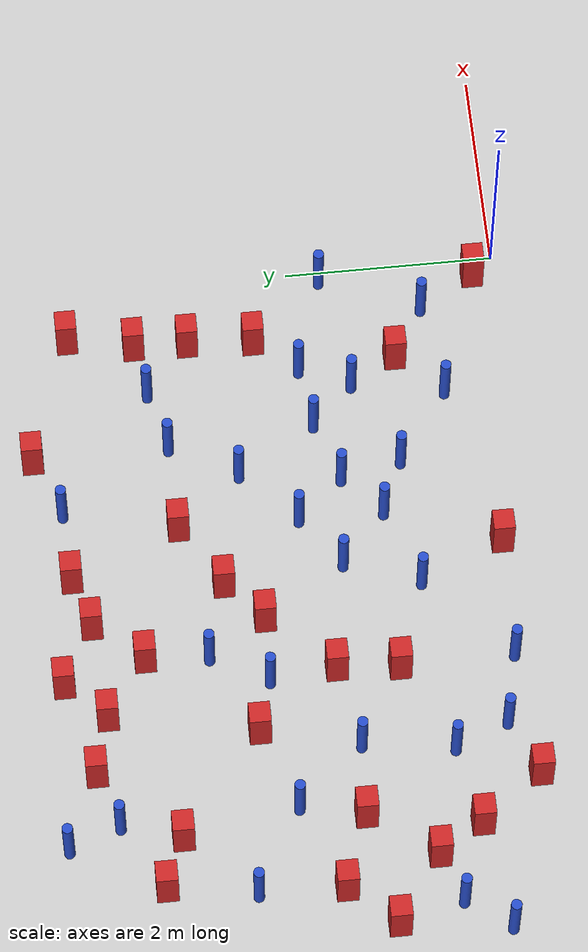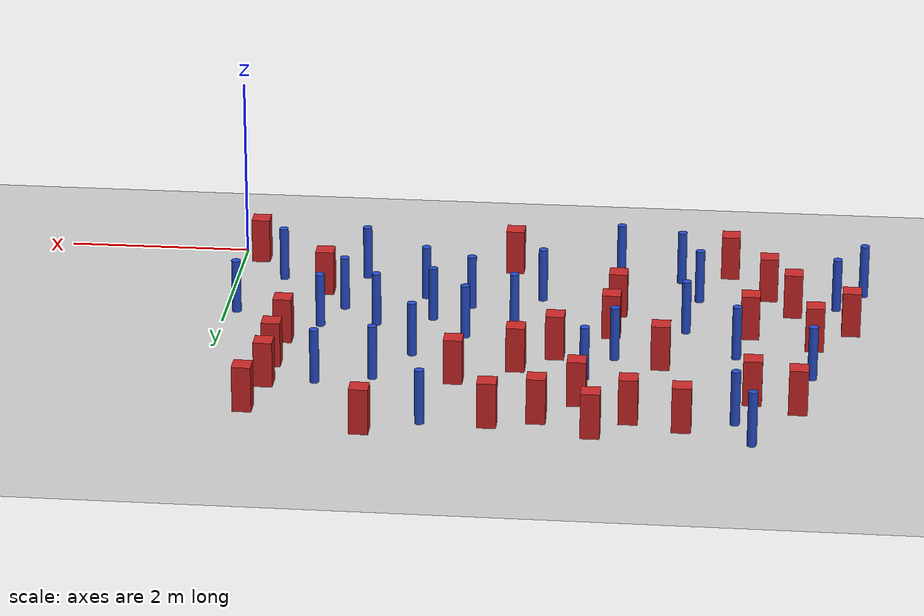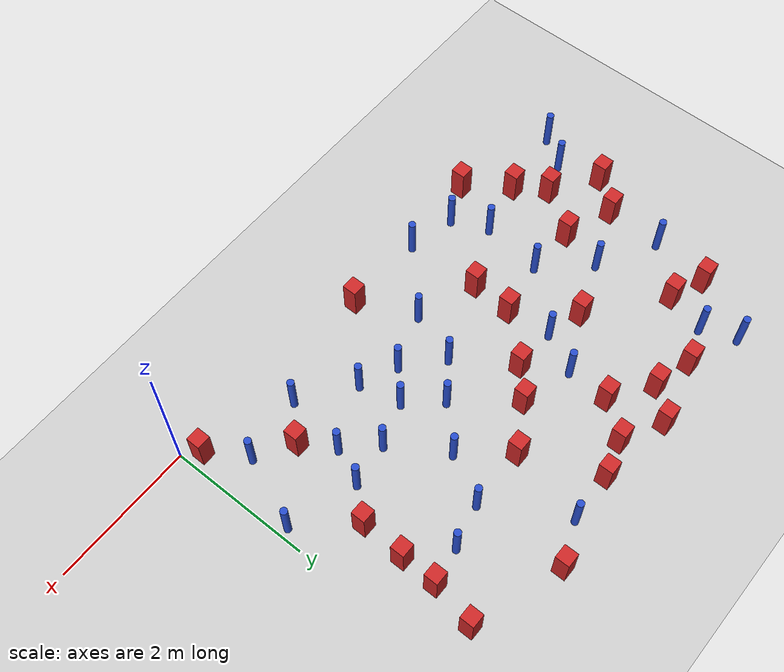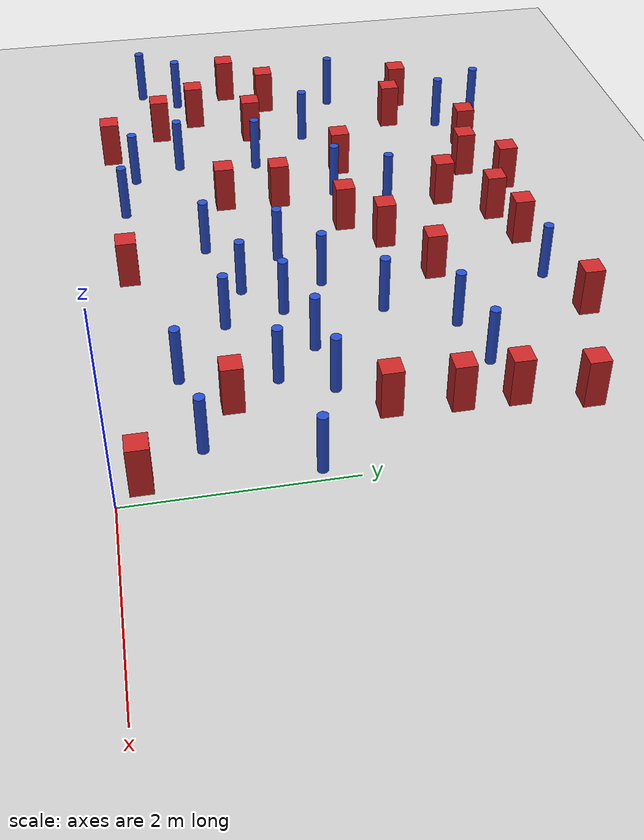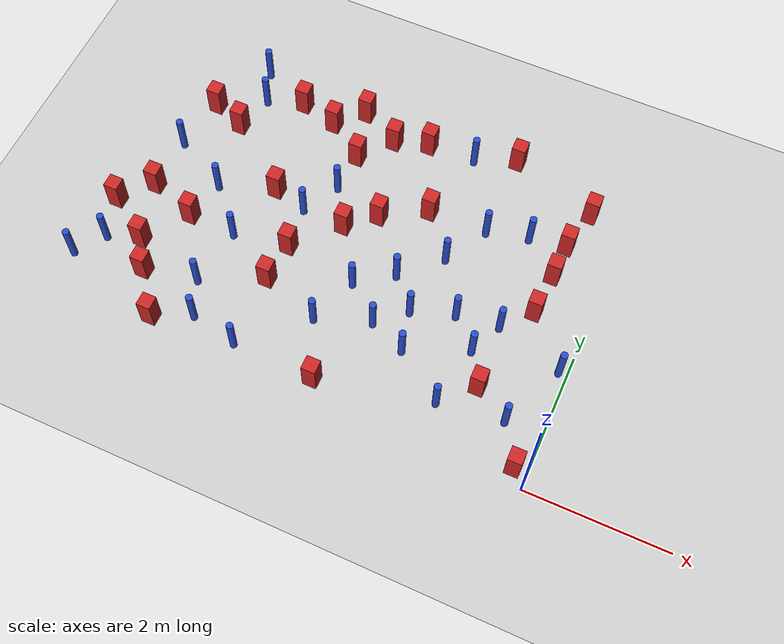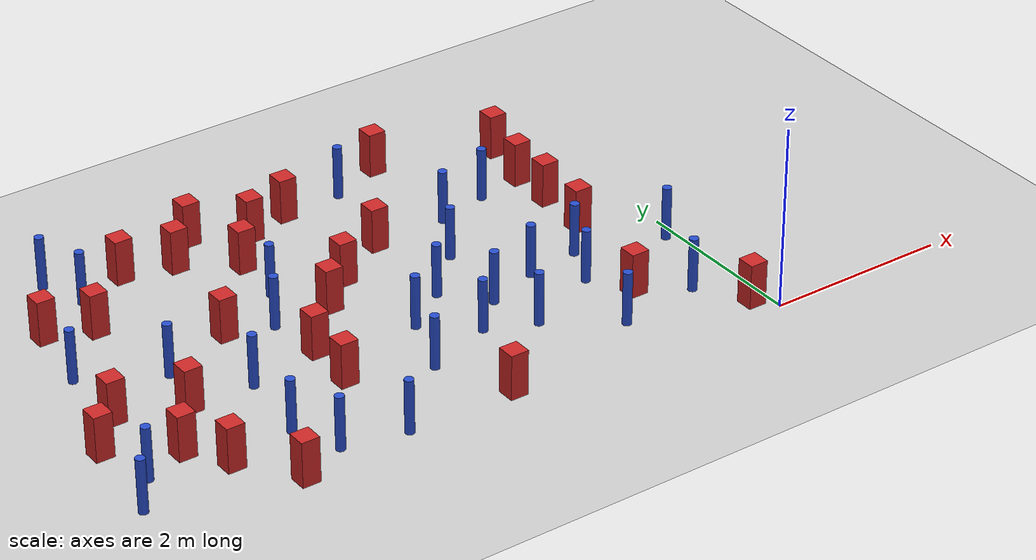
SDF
<sdf version="1.6">
 <world name="default">
  <model name="ground_plane">
   <static>1</static>
   <link name="link">
    <collision name="collision">
     <geometry><plane><normal>0 0 1</normal><size>100 100</size></plane></geometry>
     <surface><friction><ode><mu>100</mu><mu2>50</mu2></ode></friction></surface>
    </collision>
    <visual name="visual">
     <cast_shadows>0</cast_shadows>
     <geometry><plane><normal>0 0 1</normal><size>100 100</size></plane></geometry>
     <material>
      <ambient>1.0 1.0 1.0 1.0</ambient>
      <diffuse>0.8 0.8 0.8 1.0</diffuse>
      <specular>0.01 0.01 0.01 1.000000</specular>
     </material>
    </visual>
   </link>
  </model>
  <model name="pole_obstacle2">
   <static>true</static>
   <pose>-5.59544689235 2.43594534413 -9.47619616065e-06 5.49618799738e-07 2.36310414051e-07 -1.55090534805e-07</pose>
   <link name="link">
    <pose>0 0 0.3 0 -0 0</pose>
    <inertial>
     <mass>1</mass>
     <inertia><ixx>0.145833</ixx><ixy>0</ixy><ixz>0</ixz><iyy>0.145833</iyy><iyz>0</iyz><izz>0.125</izz></inertia>
    </inertial>
    <collision name="collision">
     <geometry><cylinder><radius>0.05</radius><length>.6</length></cylinder></geometry>
    </collision>
    <visual name="visual">
     <geometry><cylinder><radius>0.05</radius><length>.6</length></cylinder></geometry>
     <material>
      <script><name>Gazebo/Blue</name><uri>file://media/materials/scripts/gazebo.material</uri></script>
     </material>
    </visual>
   </link>
  </model>
  <model name="pole_obstacle3">
   <static>true</static>
   <pose>-1.79859433589 3.30144973369 -9.47619616065e-06 5.49618799737e-07 2.36310414062e-07 -1.55090534798e-07</pose>
   <link name="link">
    <pose>0 0 0.3 0 -0 0</pose>
    <inertial>
     <mass>1</mass>
     <inertia><ixx>0.145833</ixx><ixy>0</ixy><ixz>0</ixz><iyy>0.145833</iyy><iyz>0</iyz><izz>0.125</izz></inertia>
    </inertial>
    <collision name="collision">
     <geometry><cylinder><radius>0.05</radius><length>.6</length></cylinder></geometry>
    </collision>
    <visual name="visual">
     <geometry><cylinder><radius>0.05</radius><length>.6</length></cylinder></geometry>
     <material>
      <script><name>Gazebo/Blue</name><uri>file://media/materials/scripts/gazebo.material</uri></script>
     </material>
    </visual>
   </link>
  </model>
  <model name="pole_obstacle4">
   <static>true</static>
   <pose>-2.6717958394 2.1456863757 -9.47619616065e-06 5.49618799737e-07 2.36310414051e-07 -1.55090534807e-07</pose>
   <link name="link">
    <pose>0 0 0.3 0 -0 0</pose>
    <inertial>
     <mass>1</mass>
     <inertia><ixx>0.145833</ixx><ixy>0</ixy><ixz>0</ixz><iyy>0.145833</iyy><iyz>0</iyz><izz>0.125</izz></inertia>
    </inertial>
    <collision name="collision">
     <geometry><cylinder><radius>0.05</radius><length>.6</length></cylinder></geometry>
    </collision>
    <visual name="visual">
     <geometry><cylinder><radius>0.05</radius><length>.6</length></cylinder></geometry>
     <material>
      <script><name>Gazebo/Blue</name><uri>file://media/materials/scripts/gazebo.material</uri></script>
     </material>
    </visual>
   </link>
  </model>
  <model name="pole_obstacle11">
   <static>true</static>
   <pose>-0.522241702906 0.749692683918 -9.47619616065e-06 5.49618799737e-07 2.36310414066e-07 -1.55090534796e-07</pose>
   <link name="link">
    <pose>0 0 0.3 0 -0 0</pose>
    <inertial>
     <mass>1</mass>
     <inertia><ixx>0.145833</ixx><ixy>0</ixy><ixz>0</ixz><iyy>0.145833</iyy><iyz>0</iyz><izz>0.125</izz></inertia>
    </inertial>
    <collision name="collision">
     <geometry><cylinder><radius>0.05</radius><length>.6</length></cylinder></geometry>
    </collision>
    <visual name="visual">
     <geometry><cylinder><radius>0.05</radius><length>.6</length></cylinder></geometry>
     <material>
      <script><name>Gazebo/Blue</name><uri>file://media/materials/scripts/gazebo.material</uri></script>
     </material>
    </visual>
   </link>
  </model>
  <model name="pole_obstacle16">
   <static>true</static>
   <pose>-4.01819675636 3.11525010436 -9.47619616065e-06 5.49618799737e-07 2.36310414053e-07 -1.55090534804e-07</pose>
   <link name="link">
    <pose>0 0 0.3 0 -0 0</pose>
    <inertial>
     <mass>1</mass>
     <inertia><ixx>0.145833</ixx><ixy>0</ixy><ixz>0</ixz><iyy>0.145833</iyy><iyz>0</iyz><izz>0.125</izz></inertia>
    </inertial>
    <collision name="collision">
     <geometry><cylinder><radius>0.05</radius><length>.6</length></cylinder></geometry>
    </collision>
    <visual name="visual">
     <geometry><cylinder><radius>0.05</radius><length>.6</length></cylinder></geometry>
     <material>
      <script><name>Gazebo/Blue</name><uri>file://media/materials/scripts/gazebo.material</uri></script>
     </material>
    </visual>
   </link>
  </model>
  <model name="pole_obstacle27">
   <static>true</static>
   <pose>-3.17535466394 1.78121202835 -9.47619616065e-06 5.49618799737e-07 2.36310414072e-07 -1.55090534793e-07</pose>
   <link name="link">
    <pose>0 0 0.3 0 -0 0</pose>
    <inertial>
     <mass>1</mass>
     <inertia><ixx>0.145833</ixx><ixy>0</ixy><ixz>0</ixz><iyy>0.145833</iyy><iyz>0</iyz><izz>0.125</izz></inertia>
    </inertial>
    <collision name="collision">
     <geometry><cylinder><radius>0.05</radius><length>.6</length></cylinder></geometry>
    </collision>
    <visual name="visual">
     <geometry><cylinder><radius>0.05</radius><length>.6</length></cylinder></geometry>
     <material>
      <script><name>Gazebo/Blue</name><uri>file://media/materials/scripts/gazebo.material</uri></script>
     </material>
    </visual>
   </link>
  </model>
  <model name="square_post_obstacle22">
   <static>true</static>
   <pose>-6.42126478545 2.09017820451 -6.11067671241e-07 -5.50515727128e-06 -8.79689657224e-07 2.37013304536e-05</pose>
   <link name="link">
    <pose>0 0 0.25 0 -0 0</pose>
    <inertial>
     <mass>100</mass>
     <inertia>
      <ixx>0.166667</ixx>
      <ixy>0</ixy>
      <ixz>0</ixz>
      <iyy>0.166667</iyy>
      <iyz>0</iyz>
      <izz>0.166667</izz>
     </inertia>
    </inertial>
    <collision name="collision"><geometry><box><size>.2 .2 .5</size></box></geometry></collision>
    <visual name="visual">
     <geometry><box><size>.2 .2 .5</size></box></geometry>
     <material>
      <script><name>Gazebo/Red</name><uri>file://media/materials/scripts/gazebo.material</uri></script>
     </material>
    </visual>
   </link>
  </model>
  <model name="pole_obstacle35">
   <static>true</static>
   <pose>-1.44273794658 0.623921186694 -9.47619616065e-06 5.49618799737e-07 2.36310414065e-07 -1.55090534798e-07</pose>
   <link name="link">
    <pose>0 0 0.3 0 -0 0</pose>
    <inertial>
     <mass>1</mass>
     <inertia><ixx>0.145833</ixx><ixy>0</ixy><ixz>0</ixz><iyy>0.145833</iyy><iyz>0</iyz><izz>0.125</izz></inertia>
    </inertial>
    <collision name="collision">
     <geometry><cylinder><radius>0.05</radius><length>.6</length></cylinder></geometry>
    </collision>
    <visual name="visual">
     <geometry><cylinder><radius>0.05</radius><length>.6</length></cylinder></geometry>
     <material>
      <script><name>Gazebo/Blue</name><uri>file://media/materials/scripts/gazebo.material</uri></script>
     </material>
    </visual>
   </link>
  </model>
  <model name="square_post_obstacle30">
   <static>true</static>
   <pose>-0.548427441222 4.16960764601 -6.11067671241e-07 -5.50515727128e-06 -8.79689657224e-07 2.37013304536e-05</pose>
   <link name="link">
    <pose>0 0 0.25 0 -0 0</pose>
    <inertial>
     <mass>100</mass>
     <inertia>
      <ixx>0.166667</ixx>
      <ixy>0</ixy>
      <ixz>0</ixz>
      <iyy>0.166667</iyy>
      <iyz>0</iyz>
      <izz>0.166667</izz>
     </inertia>
    </inertial>
    <collision name="collision"><geometry><box><size>.2 .2 .5</size></box></geometry></collision>
    <visual name="visual">
     <geometry><box><size>.2 .2 .5</size></box></geometry>
     <material>
      <script><name>Gazebo/Red</name><uri>file://media/materials/scripts/gazebo.material</uri></script>
     </material>
    </visual>
   </link>
  </model>
  <model name="square_post_obstacle35">
   <static>true</static>
   <pose>-5.46748114303 0.205011239272 -6.11067671241e-07 -5.50515727128e-06 -8.79689657224e-07 2.37013304536e-05</pose>
   <link name="link">
    <pose>0 0 0.25 0 -0 0</pose>
    <inertial>
     <mass>100</mass>
     <inertia>
      <ixx>0.166667</ixx>
      <ixy>0</ixy>
      <ixz>0</ixz>
      <iyy>0.166667</iyy>
      <iyz>0</iyz>
      <izz>0.166667</izz>
     </inertia>
    </inertial>
    <collision name="collision"><geometry><box><size>.2 .2 .5</size></box></geometry></collision>
    <visual name="visual">
     <geometry><box><size>.2 .2 .5</size></box></geometry>
     <material>
      <script><name>Gazebo/Red</name><uri>file://media/materials/scripts/gazebo.material</uri></script>
     </material>
    </visual>
   </link>
  </model>
  <model name="square_post_obstacle40">
   <static>true</static>
   <pose>-4.80094264174 2.72460760366 -6.11067671241e-07 -5.50515727128e-06 -8.79689657224e-07 2.37013304536e-05</pose>
   <link name="link">
    <pose>0 0 0.25 0 -0 0</pose>
    <inertial>
     <mass>100</mass>
     <inertia>
      <ixx>0.166667</ixx>
      <ixy>0</ixy>
      <ixz>0</ixz>
      <iyy>0.166667</iyy>
      <iyz>0</iyz>
      <izz>0.166667</izz>
     </inertia>
    </inertial>
    <collision name="collision"><geometry><box><size>.2 .2 .5</size></box></geometry></collision>
    <visual name="visual">
     <geometry><box><size>.2 .2 .5</size></box></geometry>
     <material>
      <script><name>Gazebo/Red</name><uri>file://media/materials/scripts/gazebo.material</uri></script>
     </material>
    </visual>
   </link>
  </model>
  <model name="square_post_obstacle41">
   <static>true</static>
   <pose>-5.79028852805 3.51688546522 -6.11067671241e-07 -5.50515727128e-06 -8.79689657224e-07 2.37013304536e-05</pose>
   <link name="link">
    <pose>0 0 0.25 0 -0 0</pose>
    <inertial>
     <mass>100</mass>
     <inertia>
      <ixx>0.166667</ixx>
      <ixy>0</ixy>
      <ixz>0</ixz>
      <iyy>0.166667</iyy>
      <iyz>0</iyz>
      <izz>0.166667</izz>
     </inertia>
    </inertial>
    <collision name="collision"><geometry><box><size>.2 .2 .5</size></box></geometry></collision>
    <visual name="visual">
     <geometry><box><size>.2 .2 .5</size></box></geometry>
     <material>
      <script><name>Gazebo/Red</name><uri>file://media/materials/scripts/gazebo.material</uri></script>
     </material>
    </visual>
   </link>
  </model>
  <model name="square_post_obstacle60">
   <static>true</static>
   <pose>-0.682380753927 3.53982347977 -6.11067671241e-07 -5.50515727128e-06 -8.79689657224e-07 2.37013304536e-05</pose>
   <link name="link">
    <pose>0 0 0.25 0 -0 0</pose>
    <inertial>
     <mass>100</mass>
     <inertia>
      <ixx>0.166667</ixx>
      <ixy>0</ixy>
      <ixz>0</ixz>
      <iyy>0.166667</iyy>
      <iyz>0</iyz>
      <izz>0.166667</izz>
     </inertia>
    </inertial>
    <collision name="collision"><geometry><box><size>.2 .2 .5</size></box></geometry></collision>
    <visual name="visual">
     <geometry><box><size>.2 .2 .5</size></box></geometry>
     <material>
      <script><name>Gazebo/Red</name><uri>file://media/materials/scripts/gazebo.material</uri></script>
     </material>
    </visual>
   </link>
  </model>
  <model name="square_post_obstacle64">
   <static>true</static>
   <pose>-3.09609109604 4.32268352987 -6.11067671241e-07 -5.50515727128e-06 -8.79689657224e-07 2.37013304536e-05</pose>
   <link name="link">
    <pose>0 0 0.25 0 -0 0</pose>
    <inertial>
     <mass>100</mass>
     <inertia>
      <ixx>0.166667</ixx>
      <ixy>0</ixy>
      <ixz>0</ixz>
      <iyy>0.166667</iyy>
      <iyz>0</iyz>
      <izz>0.166667</izz>
     </inertia>
    </inertial>
    <collision name="collision"><geometry><box><size>.2 .2 .5</size></box></geometry></collision>
    <visual name="visual">
     <geometry><box><size>.2 .2 .5</size></box></geometry>
     <material>
      <script><name>Gazebo/Red</name><uri>file://media/materials/scripts/gazebo.material</uri></script>
     </material>
    </visual>
   </link>
  </model>
  <model name="pole_obstacle77">
   <static>true</static>
   <pose>-1.68492753225 1.90798203488 -9.47619616065e-06 5.49618799737e-07 2.36310414065e-07 -1.55090534798e-07</pose>
   <link name="link">
    <pose>0 0 0.3 0 -0 0</pose>
    <inertial>
     <mass>1</mass>
     <inertia><ixx>0.145833</ixx><ixy>0</ixy><ixz>0</ixz><iyy>0.145833</iyy><iyz>0</iyz><izz>0.125</izz></inertia>
    </inertial>
    <collision name="collision">
     <geometry><cylinder><radius>0.05</radius><length>.6</length></cylinder></geometry>
    </collision>
    <visual name="visual">
     <geometry><cylinder><radius>0.05</radius><length>.6</length></cylinder></geometry>
     <material>
      <script><name>Gazebo/Blue</name><uri>file://media/materials/scripts/gazebo.material</uri></script>
     </material>
    </visual>
   </link>
  </model>
  <model name="square_post_obstacle69">
   <static>true</static>
   <pose>-5.7262957752 1.84025555032 -6.11067671241e-07 -5.50515727128e-06 -8.79689657224e-07 2.37013304536e-05</pose>
   <link name="link">
    <pose>0 0 0.25 0 -0 0</pose>
    <inertial>
     <mass>100</mass>
     <inertia>
      <ixx>0.166667</ixx>
      <ixy>0</ixy>
      <ixz>0</ixz>
      <iyy>0.166667</iyy>
      <iyz>0</iyz>
      <izz>0.166667</izz>
     </inertia>
    </inertial>
    <collision name="collision"><geometry><box><size>.2 .2 .5</size></box></geometry></collision>
    <visual name="visual">
     <geometry><box><size>.2 .2 .5</size></box></geometry>
     <material>
      <script><name>Gazebo/Red</name><uri>file://media/materials/scripts/gazebo.material</uri></script>
     </material>
    </visual>
   </link>
  </model>
  <model name="square_post_obstacle73">
   <static>true</static>
   <pose>-6.26752196068 3.70744454973 -6.11067671241e-07 -5.50515727128e-06 -8.79689657224e-07 2.37013304536e-05</pose>
   <link name="link">
    <pose>0 0 0.25 0 -0 0</pose>
    <inertial>
     <mass>100</mass>
     <inertia>
      <ixx>0.166667</ixx>
      <ixy>0</ixy>
      <ixz>0</ixz>
      <iyy>0.166667</iyy>
      <iyz>0</iyz>
      <izz>0.166667</izz>
     </inertia>
    </inertial>
    <collision name="collision"><geometry><box><size>.2 .2 .5</size></box></geometry></collision>
    <visual name="visual">
     <geometry><box><size>.2 .2 .5</size></box></geometry>
     <material>
      <script><name>Gazebo/Red</name><uri>file://media/materials/scripts/gazebo.material</uri></script>
     </material>
    </visual>
   </link>
  </model>
  <model name="pole_obstacle86">
   <static>true</static>
   <pose>-2.67267665183 1.34352672443 -9.47619616065e-06 5.49618799737e-07 2.36310414072e-07 -1.55090534793e-07</pose>
   <link name="link">
    <pose>0 0 0.3 0 -0 0</pose>
    <inertial>
     <mass>1</mass>
     <inertia><ixx>0.145833</ixx><ixy>0</ixy><ixz>0</ixz><iyy>0.145833</iyy><iyz>0</iyz><izz>0.125</izz></inertia>
    </inertial>
    <collision name="collision">
     <geometry><cylinder><radius>0.05</radius><length>.6</length></cylinder></geometry>
    </collision>
    <visual name="visual">
     <geometry><cylinder><radius>0.05</radius><length>.6</length></cylinder></geometry>
     <material>
      <script><name>Gazebo/Blue</name><uri>file://media/materials/scripts/gazebo.material</uri></script>
     </material>
    </visual>
   </link>
  </model>
  <model name="square_post_obstacle76">
   <static>true</static>
   <pose>-0.732846755061 2.39644119763 -6.11067671241e-07 -5.50515727128e-06 -8.79689657224e-07 2.37013304536e-05</pose>
   <link name="link">
    <pose>0 0 0.25 0 -0 0</pose>
    <inertial>
     <mass>100</mass>
     <inertia>
      <ixx>0.166667</ixx>
      <ixy>0</ixy>
      <ixz>0</ixz>
      <iyy>0.166667</iyy>
      <iyz>0</iyz>
      <izz>0.166667</izz>
     </inertia>
    </inertial>
    <collision name="collision"><geometry><box><size>.2 .2 .5</size></box></geometry></collision>
    <visual name="visual">
     <geometry><box><size>.2 .2 .5</size></box></geometry>
     <material>
      <script><name>Gazebo/Red</name><uri>file://media/materials/scripts/gazebo.material</uri></script>
     </material>
    </visual>
   </link>
  </model>
  <model name="square_post_obstacle78">
   <static>true</static>
   <pose>-4.27884442889 1.36884087386 -6.11067671241e-07 -5.50515727128e-06 -8.79689657224e-07 2.37013304536e-05</pose>
   <link name="link">
    <pose>0 0 0.25 0 -0 0</pose>
    <inertial>
     <mass>100</mass>
     <inertia>
      <ixx>0.166667</ixx>
      <ixy>0</ixy>
      <ixz>0</ixz>
      <iyy>0.166667</iyy>
      <iyz>0</iyz>
      <izz>0.166667</izz>
     </inertia>
    </inertial>
    <collision name="collision"><geometry><box><size>.2 .2 .5</size></box></geometry></collision>
    <visual name="visual">
     <geometry><box><size>.2 .2 .5</size></box></geometry>
     <material>
      <script><name>Gazebo/Red</name><uri>file://media/materials/scripts/gazebo.material</uri></script>
     </material>
    </visual>
   </link>
  </model>
  <model name="square_post_obstacle80">
   <static>true</static>
   <pose>-2.65270403747 3.28384668978 -6.11067671241e-07 -5.50515727128e-06 -8.79689657224e-07 2.37013304536e-05</pose>
   <link name="link">
    <pose>0 0 0.25 0 -0 0</pose>
    <inertial>
     <mass>100</mass>
     <inertia>
      <ixx>0.166667</ixx>
      <ixy>0</ixy>
      <ixz>0</ixz>
      <iyy>0.166667</iyy>
      <iyz>0</iyz>
      <izz>0.166667</izz>
     </inertia>
    </inertial>
    <collision name="collision"><geometry><box><size>.2 .2 .5</size></box></geometry></collision>
    <visual name="visual">
     <geometry><box><size>.2 .2 .5</size></box></geometry>
     <material>
      <script><name>Gazebo/Red</name><uri>file://media/materials/scripts/gazebo.material</uri></script>
     </material>
    </visual>
   </link>
  </model>
  <model name="square_post_obstacle83">
   <static>true</static>
   <pose>-6.17686945433 1.21784740283 -6.11067671241e-07 -5.50515727128e-06 -8.79689657224e-07 2.37013304536e-05</pose>
   <link name="link">
    <pose>0 0 0.25 0 -0 0</pose>
    <inertial>
     <mass>100</mass>
     <inertia>
      <ixx>0.166667</ixx>
      <ixy>0</ixy>
      <ixz>0</ixz>
      <iyy>0.166667</iyy>
      <iyz>0</iyz>
      <izz>0.166667</izz>
     </inertia>
    </inertial>
    <collision name="collision"><geometry><box><size>.2 .2 .5</size></box></geometry></collision>
    <visual name="visual">
     <geometry><box><size>.2 .2 .5</size></box></geometry>
     <material>
      <script><name>Gazebo/Red</name><uri>file://media/materials/scripts/gazebo.material</uri></script>
     </material>
    </visual>
   </link>
  </model>
  <model name="pole_obstacle94">
   <static>true</static>
   <pose>-5.62773318868 4.07595739538 -9.47619616065e-06 5.49618799737e-07 2.36310414037e-07 -1.55090534814e-07</pose>
   <link name="link">
    <pose>0 0 0.3 0 -0 0</pose>
    <inertial>
     <mass>1</mass>
     <inertia><ixx>0.145833</ixx><ixy>0</ixy><ixz>0</ixz><iyy>0.145833</iyy><iyz>0</iyz><izz>0.125</izz></inertia>
    </inertial>
    <collision name="collision">
     <geometry><cylinder><radius>0.05</radius><length>.6</length></cylinder></geometry>
    </collision>
    <visual name="visual">
     <geometry><cylinder><radius>0.05</radius><length>.6</length></cylinder></geometry>
     <material>
      <script><name>Gazebo/Blue</name><uri>file://media/materials/scripts/gazebo.material</uri></script>
     </material>
    </visual>
   </link>
  </model>
  <model name="square_post_obstacle91">
   <static>true</static>
   <pose>-3.59229528987 4.17568735549 -6.11067671241e-07 -5.50515727128e-06 -8.79689657224e-07 2.37013304536e-05</pose>
   <link name="link">
    <pose>0 0 0.25 0 -0 0</pose>
    <inertial>
     <mass>100</mass>
     <inertia>
      <ixx>0.166667</ixx>
      <ixy>0</ixy>
      <ixz>0</ixz>
      <iyy>0.166667</iyy>
      <iyz>0</iyz>
      <izz>0.166667</izz>
     </inertia>
    </inertial>
    <collision name="collision"><geometry><box><size>.2 .2 .5</size></box></geometry></collision>
    <visual name="visual">
     <geometry><box><size>.2 .2 .5</size></box></geometry>
     <material>
      <script><name>Gazebo/Red</name><uri>file://media/materials/scripts/gazebo.material</uri></script>
     </material>
    </visual>
   </link>
  </model>
  <model name="pole_obstacle102">
   <static>true</static>
   <pose>-2.14994901951 2.6620737659 -9.47619616065e-06 5.49618799737e-07 2.36310414051e-07 -1.55090534807e-07</pose>
   <link name="link">
    <pose>0 0 0.3 0 -0 0</pose>
    <inertial>
     <mass>1</mass>
     <inertia><ixx>0.145833</ixx><ixy>0</ixy><ixz>0</ixz><iyy>0.145833</iyy><iyz>0</iyz><izz>0.125</izz></inertia>
    </inertial>
    <collision name="collision">
     <geometry><cylinder><radius>0.05</radius><length>.6</length></cylinder></geometry>
    </collision>
    <visual name="visual">
     <geometry><cylinder><radius>0.05</radius><length>.6</length></cylinder></geometry>
     <material>
      <script><name>Gazebo/Blue</name><uri>file://media/materials/scripts/gazebo.material</uri></script>
     </material>
    </visual>
   </link>
  </model>
  <model name="square_post_obstacle99">
   <static>true</static>
   <pose>-6.80732255456 1.65443631116 -6.11067671241e-07 -5.50515727128e-06 -8.79689657224e-07 2.37013304536e-05</pose>
   <link name="link">
    <pose>0 0 0.25 0 -0 0</pose>
    <inertial>
     <mass>100</mass>
     <inertia>
      <ixx>0.166667</ixx>
      <ixy>0</ixy>
      <ixz>0</ixz>
      <iyy>0.166667</iyy>
      <iyz>0</iyz>
      <izz>0.166667</izz>
     </inertia>
    </inertial>
    <collision name="collision"><geometry><box><size>.2 .2 .5</size></box></geometry></collision>
    <visual name="visual">
     <geometry><box><size>.2 .2 .5</size></box></geometry>
     <material>
      <script><name>Gazebo/Red</name><uri>file://media/materials/scripts/gazebo.material</uri></script>
     </material>
    </visual>
   </link>
  </model>
  <model name="square_post_obstacle103">
   <static>true</static>
   <pose>-4.16657794796 4.47593308911 -6.11067671241e-07 -5.50515727128e-06 -8.79689657224e-07 2.37013304536e-05</pose>
   <link name="link">
    <pose>0 0 0.25 0 -0 0</pose>
    <inertial>
     <mass>100</mass>
     <inertia>
      <ixx>0.166667</ixx>
      <ixy>0</ixy>
      <ixz>0</ixz>
      <iyy>0.166667</iyy>
      <iyz>0</iyz>
      <izz>0.166667</izz>
     </inertia>
    </inertial>
    <collision name="collision"><geometry><box><size>.2 .2 .5</size></box></geometry></collision>
    <visual name="visual">
     <geometry><box><size>.2 .2 .5</size></box></geometry>
     <material>
      <script><name>Gazebo/Red</name><uri>file://media/materials/scripts/gazebo.material</uri></script>
     </material>
    </visual>
   </link>
  </model>
  <model name="square_post_obstacle114">
   <static>true</static>
   <pose>-5.90406561337 0.79317691153 -6.11067671241e-07 -5.50515727128e-06 -8.79689657224e-07 2.37013304536e-05</pose>
   <link name="link">
    <pose>0 0 0.25 0 -0 0</pose>
    <inertial>
     <mass>100</mass>
     <inertia>
      <ixx>0.166667</ixx>
      <ixy>0</ixy>
      <ixz>0</ixz>
      <iyy>0.166667</iyy>
      <iyz>0</iyz>
      <izz>0.166667</izz>
     </inertia>
    </inertial>
    <collision name="collision"><geometry><box><size>.2 .2 .5</size></box></geometry></collision>
    <visual name="visual">
     <geometry><box><size>.2 .2 .5</size></box></geometry>
     <material>
      <script><name>Gazebo/Red</name><uri>file://media/materials/scripts/gazebo.material</uri></script>
     </material>
    </visual>
   </link>
  </model>
  <model name="pole_obstacle118">
   <static>true</static>
   <pose>-4.25493549779 0.295737442837 -9.47619616065e-06 5.49618799737e-07 2.3631041406e-07 -1.550905348e-07</pose>
   <link name="link">
    <pose>0 0 0.3 0 -0 0</pose>
    <inertial>
     <mass>1</mass>
     <inertia><ixx>0.145833</ixx><ixy>0</ixy><ixz>0</ixz><iyy>0.145833</iyy><iyz>0</iyz><izz>0.125</izz></inertia>
    </inertial>
    <collision name="collision">
     <geometry><cylinder><radius>0.05</radius><length>.6</length></cylinder></geometry>
    </collision>
    <visual name="visual">
     <geometry><cylinder><radius>0.05</radius><length>.6</length></cylinder></geometry>
     <material>
      <script><name>Gazebo/Blue</name><uri>file://media/materials/scripts/gazebo.material</uri></script>
     </material>
    </visual>
   </link>
  </model>
  <model name="pole_obstacle121">
   <static>true</static>
   <pose>-5.81281750122 4.55704863924 -9.47619616065e-06 5.49618799737e-07 2.36310414037e-07 -1.55090534814e-07</pose>
   <link name="link">
    <pose>0 0 0.3 0 -0 0</pose>
    <inertial>
     <mass>1</mass>
     <inertia><ixx>0.145833</ixx><ixy>0</ixy><ixz>0</ixz><iyy>0.145833</iyy><iyz>0</iyz><izz>0.125</izz></inertia>
    </inertial>
    <collision name="collision">
     <geometry><cylinder><radius>0.05</radius><length>.6</length></cylinder></geometry>
    </collision>
    <visual name="visual">
     <geometry><cylinder><radius>0.05</radius><length>.6</length></cylinder></geometry>
     <material>
      <script><name>Gazebo/Blue</name><uri>file://media/materials/scripts/gazebo.material</uri></script>
     </material>
    </visual>
   </link>
  </model>
  <model name="pole_obstacle131">
   <static>true</static>
   <pose>-4.93396667082 0.442117354792 -9.47619616065e-06 5.49618799737e-07 2.36310414057e-07 -1.55090534802e-07</pose>
   <link name="link">
    <pose>0 0 0.3 0 -0 0</pose>
    <inertial>
     <mass>1</mass>
     <inertia><ixx>0.145833</ixx><ixy>0</ixy><ixz>0</ixz><iyy>0.145833</iyy><iyz>0</iyz><izz>0.125</izz></inertia>
    </inertial>
    <collision name="collision">
     <geometry><cylinder><radius>0.05</radius><length>.6</length></cylinder></geometry>
    </collision>
    <visual name="visual">
     <geometry><cylinder><radius>0.05</radius><length>.6</length></cylinder></geometry>
     <material>
      <script><name>Gazebo/Blue</name><uri>file://media/materials/scripts/gazebo.material</uri></script>
     </material>
    </visual>
   </link>
  </model>
  <model name="square_post_obstacle126">
   <static>true</static>
   <pose>-4.23690094176 1.95546703966 -6.11067671241e-07 -5.50515727128e-06 -8.79689657224e-07 2.37013304536e-05</pose>
   <link name="link">
    <pose>0 0 0.25 0 -0 0</pose>
    <inertial>
     <mass>100</mass>
     <inertia>
      <ixx>0.166667</ixx>
      <ixy>0</ixy>
      <ixz>0</ixz>
      <iyy>0.166667</iyy>
      <iyz>0</iyz>
      <izz>0.166667</izz>
     </inertia>
    </inertial>
    <collision name="collision"><geometry><box><size>.2 .2 .5</size></box></geometry></collision>
    <visual name="visual">
     <geometry><box><size>.2 .2 .5</size></box></geometry>
     <material>
      <script><name>Gazebo/Red</name><uri>file://media/materials/scripts/gazebo.material</uri></script>
     </material>
    </visual>
   </link>
  </model>
  <model name="square_post_obstacle132">
   <static>true</static>
   <pose>-3.06982331243 0.270606978601 -6.11067671241e-07 -5.50515727128e-06 -8.79689657224e-07 2.37013304536e-05</pose>
   <link name="link">
    <pose>0 0 0.25 0 -0 0</pose>
    <inertial>
     <mass>100</mass>
     <inertia>
      <ixx>0.166667</ixx>
      <ixy>0</ixy>
      <ixz>0</ixz>
      <iyy>0.166667</iyy>
      <iyz>0</iyz>
      <izz>0.166667</izz>
     </inertia>
    </inertial>
    <collision name="collision"><geometry><box><size>.2 .2 .5</size></box></geometry></collision>
    <visual name="visual">
     <geometry><box><size>.2 .2 .5</size></box></geometry>
     <material>
      <script><name>Gazebo/Red</name><uri>file://media/materials/scripts/gazebo.material</uri></script>
     </material>
    </visual>
   </link>
  </model>
  <model name="pole_obstacle133">
   <static>true</static>
   <pose>-5.03447775518 1.80644073505 -9.47619616065e-06 5.49618799738e-07 2.36310414071e-07 -1.55090534796e-07</pose>
   <link name="link">
    <pose>0 0 0.3 0 -0 0</pose>
    <inertial>
     <mass>1</mass>
     <inertia><ixx>0.145833</ixx><ixy>0</ixy><ixz>0</ixz><iyy>0.145833</iyy><iyz>0</iyz><izz>0.125</izz></inertia>
    </inertial>
    <collision name="collision">
     <geometry><cylinder><radius>0.05</radius><length>.6</length></cylinder></geometry>
    </collision>
    <visual name="visual">
     <geometry><cylinder><radius>0.05</radius><length>.6</length></cylinder></geometry>
     <material>
      <script><name>Gazebo/Blue</name><uri>file://media/materials/scripts/gazebo.material</uri></script>
     </material>
    </visual>
   </link>
  </model>
  <model name="pole_obstacle134">
   <static>true</static>
   <pose>-2.28181355933 1.70488515663 -9.47619616065e-06 5.49618799737e-07 2.36310414072e-07 -1.55090534793e-07</pose>
   <link name="link">
    <pose>0 0 0.3 0 -0 0</pose>
    <inertial>
     <mass>1</mass>
     <inertia><ixx>0.145833</ixx><ixy>0</ixy><ixz>0</ixz><iyy>0.145833</iyy><iyz>0</iyz><izz>0.125</izz></inertia>
    </inertial>
    <collision name="collision">
     <geometry><cylinder><radius>0.05</radius><length>.6</length></cylinder></geometry>
    </collision>
    <visual name="visual">
     <geometry><cylinder><radius>0.05</radius><length>.6</length></cylinder></geometry>
     <material>
      <script><name>Gazebo/Blue</name><uri>file://media/materials/scripts/gazebo.material</uri></script>
     </material>
    </visual>
   </link>
  </model>
  <model name="pole_obstacle143">
   <static>true</static>
   <pose>-2.40400737448 4.35447770289 -9.47619616065e-06 5.49618799738e-07 2.3631041406e-07 -1.55090534801e-07</pose>
   <link name="link">
    <pose>0 0 0.3 0 -0 0</pose>
    <inertial>
     <mass>1</mass>
     <inertia><ixx>0.145833</ixx><ixy>0</ixy><ixz>0</ixz><iyy>0.145833</iyy><iyz>0</iyz><izz>0.125</izz></inertia>
    </inertial>
    <collision name="collision">
     <geometry><cylinder><radius>0.05</radius><length>.6</length></cylinder></geometry>
    </collision>
    <visual name="visual">
     <geometry><cylinder><radius>0.05</radius><length>.6</length></cylinder></geometry>
     <material>
      <script><name>Gazebo/Blue</name><uri>file://media/materials/scripts/gazebo.material</uri></script>
     </material>
    </visual>
   </link>
  </model>
  <model name="pole_obstacle150">
   <static>true</static>
   <pose>-6.40602280169 2.88777195284 -9.47619616065e-06 5.49618799738e-07 2.36310414051e-07 -1.55090534805e-07</pose>
   <link name="link">
    <pose>0 0 0.3 0 -0 0</pose>
    <inertial>
     <mass>1</mass>
     <inertia><ixx>0.145833</ixx><ixy>0</ixy><ixz>0</ixz><iyy>0.145833</iyy><iyz>0</iyz><izz>0.125</izz></inertia>
    </inertial>
    <collision name="collision">
     <geometry><cylinder><radius>0.05</radius><length>.6</length></cylinder></geometry>
    </collision>
    <visual name="visual">
     <geometry><cylinder><radius>0.05</radius><length>.6</length></cylinder></geometry>
     <material>
      <script><name>Gazebo/Blue</name><uri>file://media/materials/scripts/gazebo.material</uri></script>
     </material>
    </visual>
   </link>
  </model>
  <model name="pole_obstacle152">
   <static>true</static>
   <pose>-6.64796193772 1.0477865657 -9.47619616065e-06 5.49618799737e-07 2.36310414071e-07 -1.55090534795e-07</pose>
   <link name="link">
    <pose>0 0 0.3 0 -0 0</pose>
    <inertial>
     <mass>1</mass>
     <inertia><ixx>0.145833</ixx><ixy>0</ixy><ixz>0</ixz><iyy>0.145833</iyy><iyz>0</iyz><izz>0.125</izz></inertia>
    </inertial>
    <collision name="collision">
     <geometry><cylinder><radius>0.05</radius><length>.6</length></cylinder></geometry>
    </collision>
    <visual name="visual">
     <geometry><cylinder><radius>0.05</radius><length>.6</length></cylinder></geometry>
     <material>
      <script><name>Gazebo/Blue</name><uri>file://media/materials/scripts/gazebo.material</uri></script>
     </material>
    </visual>
   </link>
  </model>
  <model name="pole_obstacle157">
   <static>true</static>
   <pose>-1.29255315008 1.50502639155 -9.47619616065e-06 5.49618799737e-07 2.36310414065e-07 -1.55090534798e-07</pose>
   <link name="link">
    <pose>0 0 0.3 0 -0 0</pose>
    <inertial>
     <mass>1</mass>
     <inertia><ixx>0.145833</ixx><ixy>0</ixy><ixz>0</ixz><iyy>0.145833</iyy><iyz>0</iyz><izz>0.125</izz></inertia>
    </inertial>
    <collision name="collision">
     <geometry><cylinder><radius>0.05</radius><length>.6</length></cylinder></geometry>
    </collision>
    <visual name="visual">
     <geometry><cylinder><radius>0.05</radius><length>.6</length></cylinder></geometry>
     <material>
      <script><name>Gazebo/Blue</name><uri>file://media/materials/scripts/gazebo.material</uri></script>
     </material>
    </visual>
   </link>
  </model>
  <model name="square_post_obstacle154">
   <static>true</static>
   <pose>-3.6715945012 2.56597405084 -6.11067671241e-07 -5.50515727128e-06 -8.79689657224e-07 2.37013304536e-05</pose>
   <link name="link">
    <pose>0 0 0.25 0 -0 0</pose>
    <inertial>
     <mass>100</mass>
     <inertia>
      <ixx>0.166667</ixx>
      <ixy>0</ixy>
      <ixz>0</ixz>
      <iyy>0.166667</iyy>
      <iyz>0</iyz>
      <izz>0.166667</izz>
     </inertia>
    </inertial>
    <collision name="collision"><geometry><box><size>.2 .2 .5</size></box></geometry></collision>
    <visual name="visual">
     <geometry><box><size>.2 .2 .5</size></box></geometry>
     <material>
      <script><name>Gazebo/Red</name><uri>file://media/materials/scripts/gazebo.material</uri></script>
     </material>
    </visual>
   </link>
  </model>
  <model name="pole_obstacle166">
   <static>true</static>
   <pose>-3.43350175265 1.0694129238 -9.47619616065e-06 5.49618799737e-07 2.36310414072e-07 -1.55090534793e-07</pose>
   <link name="link">
    <pose>0 0 0.3 0 -0 0</pose>
    <inertial>
     <mass>1</mass>
     <inertia><ixx>0.145833</ixx><ixy>0</ixy><ixz>0</ixz><iyy>0.145833</iyy><iyz>0</iyz><izz>0.125</izz></inertia>
    </inertial>
    <collision name="collision">
     <geometry><cylinder><radius>0.05</radius><length>.6</length></cylinder></geometry>
    </collision>
    <visual name="visual">
     <geometry><cylinder><radius>0.05</radius><length>.6</length></cylinder></geometry>
     <material>
      <script><name>Gazebo/Blue</name><uri>file://media/materials/scripts/gazebo.material</uri></script>
     </material>
    </visual>
   </link>
  </model>
  <model name="pole_obstacle169">
   <static>true</static>
   <pose>-1.08088551565 1.98809182871 -9.47619616065e-06 5.49618799737e-07 2.36310414059e-07 -1.55090534801e-07</pose>
   <link name="link">
    <pose>0 0 0.3 0 -0 0</pose>
    <inertial>
     <mass>1</mass>
     <inertia><ixx>0.145833</ixx><ixy>0</ixy><ixz>0</ixz><iyy>0.145833</iyy><iyz>0</iyz><izz>0.125</izz></inertia>
    </inertial>
    <collision name="collision">
     <geometry><cylinder><radius>0.05</radius><length>.6</length></cylinder></geometry>
    </collision>
    <visual name="visual">
     <geometry><cylinder><radius>0.05</radius><length>.6</length></cylinder></geometry>
     <material>
      <script><name>Gazebo/Blue</name><uri>file://media/materials/scripts/gazebo.material</uri></script>
     </material>
    </visual>
   </link>
  </model>
  <model name="square_post_obstacle169">
   <static>true</static>
   <pose>-5.08549721001 4.24845430471 -6.11067671241e-07 -5.50515727128e-06 -8.79689657224e-07 2.37013304536e-05</pose>
   <link name="link">
    <pose>0 0 0.25 0 -0 0</pose>
    <inertial>
     <mass>100</mass>
     <inertia>
      <ixx>0.166667</ixx>
      <ixy>0</ixy>
      <ixz>0</ixz>
      <iyy>0.166667</iyy>
      <iyz>0</iyz>
      <izz>0.166667</izz>
     </inertia>
    </inertial>
    <collision name="collision"><geometry><box><size>.2 .2 .5</size></box></geometry></collision>
    <visual name="visual">
     <geometry><box><size>.2 .2 .5</size></box></geometry>
     <material>
      <script><name>Gazebo/Red</name><uri>file://media/materials/scripts/gazebo.material</uri></script>
     </material>
    </visual>
   </link>
  </model>
  <model name="square_post_obstacle170">
   <static>true</static>
   <pose>-0.695705126605 3.02630191938 -6.11067671241e-07 -5.50515727128e-06 -8.79689657224e-07 2.37013304536e-05</pose>
   <link name="link">
    <pose>0 0 0.25 0 -0 0</pose>
    <inertial>
     <mass>100</mass>
     <inertia>
      <ixx>0.166667</ixx>
      <ixy>0</ixy>
      <ixz>0</ixz>
      <iyy>0.166667</iyy>
      <iyz>0</iyz>
      <izz>0.166667</izz>
     </inertia>
    </inertial>
    <collision name="collision"><geometry><box><size>.2 .2 .5</size></box></geometry></collision>
    <visual name="visual">
     <geometry><box><size>.2 .2 .5</size></box></geometry>
     <material>
      <script><name>Gazebo/Red</name><uri>file://media/materials/scripts/gazebo.material</uri></script>
     </material>
    </visual>
   </link>
  </model>
  <model name="square_post_obstacle171">
   <static>true</static>
   <pose>-1.81175971938 4.59184163328 -6.11067671241e-07 -5.50515727128e-06 -8.79689657224e-07 2.37013304536e-05</pose>
   <link name="link">
    <pose>0 0 0.25 0 -0 0</pose>
    <inertial>
     <mass>100</mass>
     <inertia>
      <ixx>0.166667</ixx>
      <ixy>0</ixy>
      <ixz>0</ixz>
      <iyy>0.166667</iyy>
      <iyz>0</iyz>
      <izz>0.166667</izz>
     </inertia>
    </inertial>
    <collision name="collision"><geometry><box><size>.2 .2 .5</size></box></geometry></collision>
    <visual name="visual">
     <geometry><box><size>.2 .2 .5</size></box></geometry>
     <material>
      <script><name>Gazebo/Red</name><uri>file://media/materials/scripts/gazebo.material</uri></script>
     </material>
    </visual>
   </link>
  </model>
  <model name="pole_obstacle170">
   <static>true</static>
   <pose>-1.20361663036 3.45112275652 -9.47619616065e-06 5.49618799737e-07 2.36310414062e-07 -1.55090534798e-07</pose>
   <link name="link">
    <pose>0 0 0.3 0 -0 0</pose>
    <inertial>
     <mass>1</mass>
     <inertia><ixx>0.145833</ixx><ixy>0</ixy><ixz>0</ixz><iyy>0.145833</iyy><iyz>0</iyz><izz>0.125</izz></inertia>
    </inertial>
    <collision name="collision">
     <geometry><cylinder><radius>0.05</radius><length>.6</length></cylinder></geometry>
    </collision>
    <visual name="visual">
     <geometry><cylinder><radius>0.05</radius><length>.6</length></cylinder></geometry>
     <material>
      <script><name>Gazebo/Blue</name><uri>file://media/materials/scripts/gazebo.material</uri></script>
     </material>
    </visual>
   </link>
  </model>
  <model name="pole_obstacle181">
   <static>true</static>
   <pose>-2.14992056596 1.12537784882 -9.47619616065e-06 5.49618799737e-07 2.36310414072e-07 -1.55090534793e-07</pose>
   <link name="link">
    <pose>0 0 0.3 0 -0 0</pose>
    <inertial>
     <mass>1</mass>
     <inertia><ixx>0.145833</ixx><ixy>0</ixy><ixz>0</ixz><iyy>0.145833</iyy><iyz>0</iyz><izz>0.125</izz></inertia>
    </inertial>
    <collision name="collision">
     <geometry><cylinder><radius>0.05</radius><length>.6</length></cylinder></geometry>
    </collision>
    <visual name="visual">
     <geometry><cylinder><radius>0.05</radius><length>.6</length></cylinder></geometry>
     <material>
      <script><name>Gazebo/Blue</name><uri>file://media/materials/scripts/gazebo.material</uri></script>
     </material>
    </visual>
   </link>
  </model>
  <model name="square_post_obstacle189">
   <static>true</static>
   <pose>-4.53253608261 4.10256305815 -6.11067671241e-07 -5.50515727128e-06 -8.79689657224e-07 2.37013304536e-05</pose>
   <link name="link">
    <pose>0 0 0.25 0 -0 0</pose>
    <inertial>
     <mass>100</mass>
     <inertia>
      <ixx>0.166667</ixx>
      <ixy>0</ixy>
      <ixz>0</ixz>
      <iyy>0.166667</iyy>
      <iyz>0</iyz>
      <izz>0.166667</izz>
     </inertia>
    </inertial>
    <collision name="collision"><geometry><box><size>.2 .2 .5</size></box></geometry></collision>
    <visual name="visual">
     <geometry><box><size>.2 .2 .5</size></box></geometry>
     <material>
      <script><name>Gazebo/Red</name><uri>file://media/materials/scripts/gazebo.material</uri></script>
     </material>
    </visual>
   </link>
  </model>
  <model name="square_post_obstacle191">
   <static>true</static>
   <pose>-0.194856330763 0.214951238503 -6.11067671241e-07 -5.50515727128e-06 -8.79689657224e-07 2.37013304536e-05</pose>
   <link name="link">
    <pose>0 0 0.25 0 -0 0</pose>
    <inertial>
     <mass>100</mass>
     <inertia>
      <ixx>0.166667</ixx>
      <ixy>0</ixy>
      <ixz>0</ixz>
      <iyy>0.166667</iyy>
      <iyz>0</iyz>
      <izz>0.166667</izz>
     </inertia>
    </inertial>
    <collision name="collision"><geometry><box><size>.2 .2 .5</size></box></geometry></collision>
    <visual name="visual">
     <geometry><box><size>.2 .2 .5</size></box></geometry>
     <material>
      <script><name>Gazebo/Red</name><uri>file://media/materials/scripts/gazebo.material</uri></script>
     </material>
    </visual>
   </link>
  </model>
  <model name="square_post_obstacle211">
   <static>true</static>
   <pose>-1.02342586594 1.05939916465 -6.11067671241e-07 -5.50515727128e-06 -8.79689657224e-07 2.37013304536e-05</pose>
   <link name="link">
    <pose>0 0 0.25 0 -0 0</pose>
    <inertial>
     <mass>100</mass>
     <inertia>
      <ixx>0.166667</ixx>
      <ixy>0</ixy>
      <ixz>0</ixz>
      <iyy>0.166667</iyy>
      <iyz>0</iyz>
      <izz>0.166667</izz>
     </inertia>
    </inertial>
    <collision name="collision"><geometry><box><size>.2 .2 .5</size></box></geometry></collision>
    <visual name="visual">
     <geometry><box><size>.2 .2 .5</size></box></geometry>
     <material>
      <script><name>Gazebo/Red</name><uri>file://media/materials/scripts/gazebo.material</uri></script>
     </material>
    </visual>
   </link>
  </model>
  <model name="square_post_obstacle221">
   <static>true</static>
   <pose>-3.27948143534 2.91352704872 -6.11067671241e-07 -5.50515727128e-06 -8.79689657224e-07 2.37013304536e-05</pose>
   <link name="link">
    <pose>0 0 0.25 0 -0 0</pose>
    <inertial>
     <mass>100</mass>
     <inertia>
      <ixx>0.166667</ixx>
      <ixy>0</ixy>
      <ixz>0</ixz>
      <iyy>0.166667</iyy>
      <iyz>0</iyz>
      <izz>0.166667</izz>
     </inertia>
    </inertial>
    <collision name="collision"><geometry><box><size>.2 .2 .5</size></box></geometry></collision>
    <visual name="visual">
     <geometry><box><size>.2 .2 .5</size></box></geometry>
     <material>
      <script><name>Gazebo/Red</name><uri>file://media/materials/scripts/gazebo.material</uri></script>
     </material>
    </visual>
   </link>
  </model>
  <model name="square_post_obstacle226">
   <static>true</static>
   <pose>-3.97646672764 3.7108695047 -6.11067671241e-07 -5.50515727128e-06 -8.79689657224e-07 2.37013304536e-05</pose>
   <link name="link">
    <pose>0 0 0.25 0 -0 0</pose>
    <inertial>
     <mass>100</mass>
     <inertia>
      <ixx>0.166667</ixx>
      <ixy>0</ixy>
      <ixz>0</ixz>
      <iyy>0.166667</iyy>
      <iyz>0</iyz>
      <izz>0.166667</izz>
     </inertia>
    </inertial>
    <collision name="collision"><geometry><box><size>.2 .2 .5</size></box></geometry></collision>
    <visual name="visual">
     <geometry><box><size>.2 .2 .5</size></box></geometry>
     <material>
      <script><name>Gazebo/Red</name><uri>file://media/materials/scripts/gazebo.material</uri></script>
     </material>
    </visual>
   </link>
  </model>
  <model name="pole_obstacle195">
   <static>true</static>
   <pose>-4.30670999061 2.57783002078 -9.47619616065e-06 5.49618799737e-07 2.3631041406e-07 -1.550905348e-07</pose>
   <link name="link">
    <pose>0 0 0.3 0 -0 0</pose>
    <inertial>
     <mass>1</mass>
     <inertia><ixx>0.145833</ixx><ixy>0</ixy><ixz>0</ixz><iyy>0.145833</iyy><iyz>0</iyz><izz>0.125</izz></inertia>
    </inertial>
    <collision name="collision">
     <geometry><cylinder><radius>0.05</radius><length>.6</length></cylinder></geometry>
    </collision>
    <visual name="visual">
     <geometry><cylinder><radius>0.05</radius><length>.6</length></cylinder></geometry>
     <material>
      <script><name>Gazebo/Blue</name><uri>file://media/materials/scripts/gazebo.material</uri></script>
     </material>
    </visual>
   </link>
  </model>
  <model name="pole_obstacle204">
   <static>true</static>
   <pose>-0.122727990611 1.69755002078 -9.47619616065e-06 5.49618799737e-07 2.36310414058e-07 -1.55090534802e-07</pose>
   <link name="link">
    <pose>0 0 0.3 0 -0 0</pose>
    <inertial>
     <mass>1</mass>
     <inertia><ixx>0.145833</ixx><ixy>0</ixy><ixz>0</ixz><iyy>0.145833</iyy><iyz>0</iyz><izz>0.125</izz></inertia>
    </inertial>
    <collision name="collision">
     <geometry><cylinder><radius>0.05</radius><length>.6</length></cylinder></geometry>
    </collision>
    <visual name="visual">
     <geometry><cylinder><radius>0.05</radius><length>.6</length></cylinder></geometry>
     <material>
      <script><name>Gazebo/Blue</name><uri>file://media/materials/scripts/gazebo.material</uri></script>
     </material>
    </visual>
   </link>
  </model>
  <model name="pole_obstacle214">
   <static>true</static>
   <pose>-6.94288999061 0.63816402078 -9.47619616065e-06 5.49618799737e-07 2.36310414061e-07 -1.550905348e-07</pose>
   <link name="link">
    <pose>0 0 0.3 0 -0 0</pose>
    <inertial>
     <mass>1</mass>
     <inertia><ixx>0.145833</ixx><ixy>0</ixy><ixz>0</ixz><iyy>0.145833</iyy><iyz>0</iyz><izz>0.125</izz></inertia>
    </inertial>
    <collision name="collision">
     <geometry><cylinder><radius>0.05</radius><length>.6</length></cylinder></geometry>
    </collision>
    <visual name="visual">
     <geometry><cylinder><radius>0.05</radius><length>.6</length></cylinder></geometry>
     <material>
      <script><name>Gazebo/Blue</name><uri>file://media/materials/scripts/gazebo.material</uri></script>
     </material>
    </visual>
   </link>
  </model>
  <model name="pole_obstacle216">
   <static>true</static>
   <pose>-5.14955999061 0.94868402078 -9.47619616065e-06 5.49618799737e-07 2.36310414058e-07 -1.55090534802e-07</pose>
   <link name="link">
    <pose>0 0 0.3 0 -0 0</pose>
    <inertial>
     <mass>1</mass>
     <inertia><ixx>0.145833</ixx><ixy>0</ixy><ixz>0</ixz><iyy>0.145833</iyy><iyz>0</iyz><izz>0.125</izz></inertia>
    </inertial>
    <collision name="collision">
     <geometry><cylinder><radius>0.05</radius><length>.6</length></cylinder></geometry>
    </collision>
    <visual name="visual">
     <geometry><cylinder><radius>0.05</radius><length>.6</length></cylinder></geometry>
     <material>
      <script><name>Gazebo/Blue</name><uri>file://media/materials/scripts/gazebo.material</uri></script>
     </material>
    </visual>
   </link>
  </model>
 </world>
</sdf>
